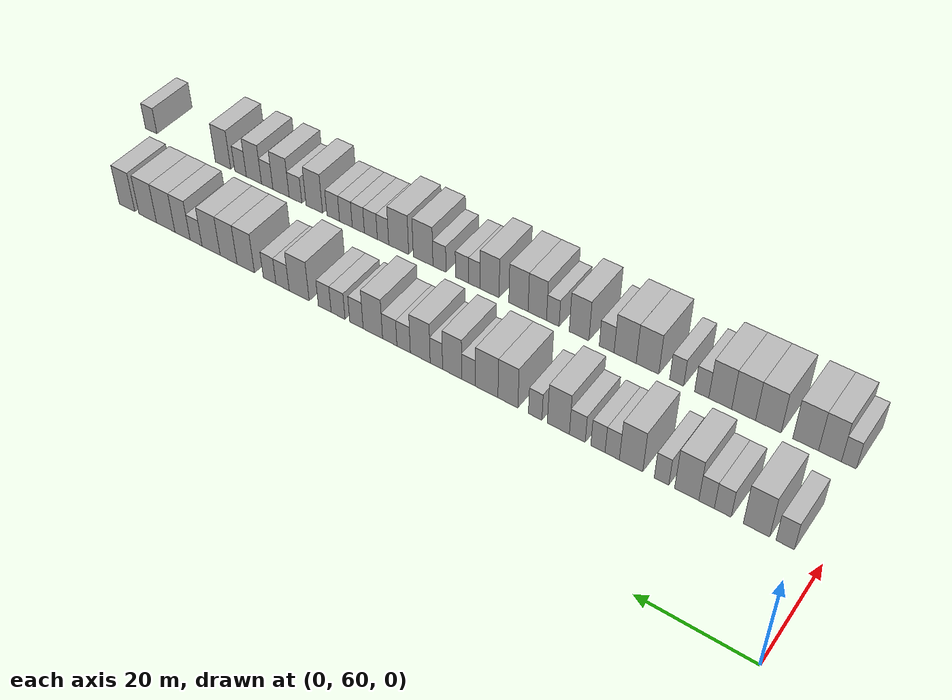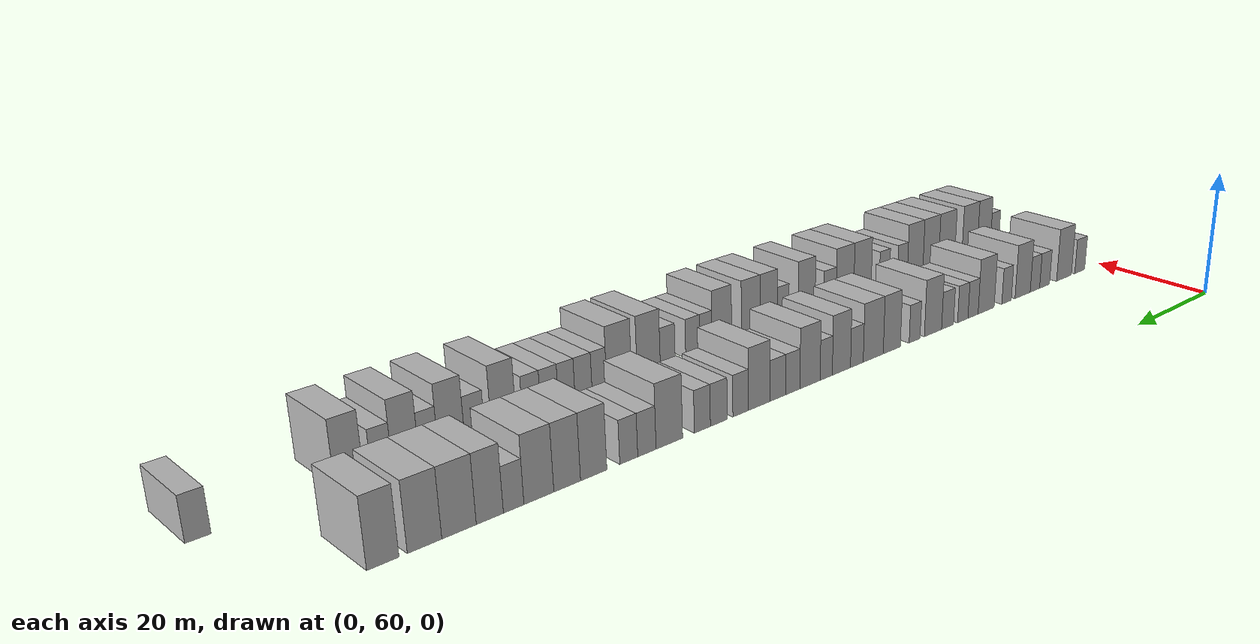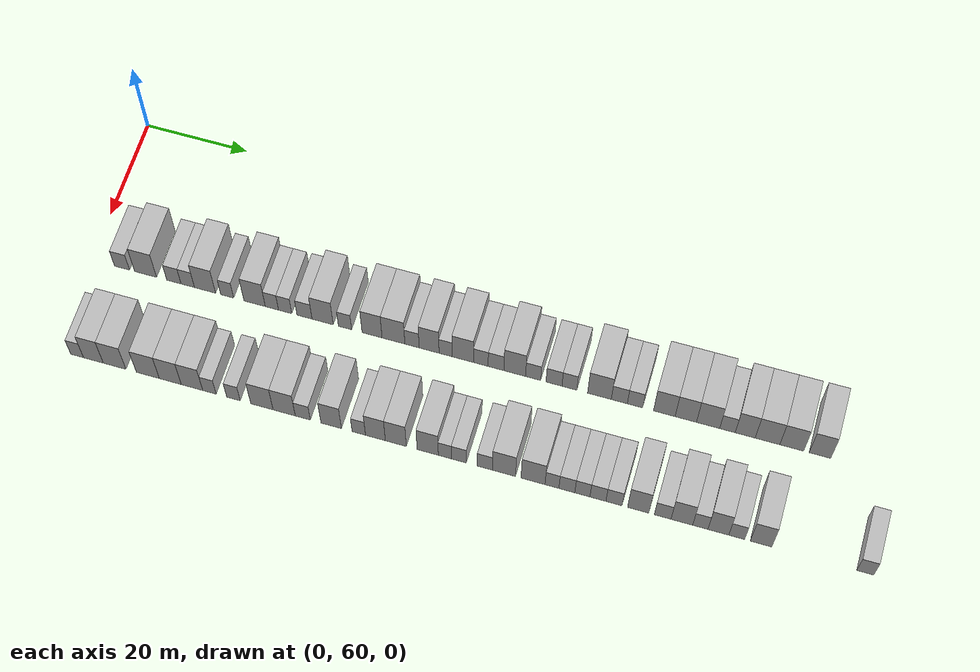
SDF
<sdf version="1.6">
 <world name="default">
  <model name="building_69">
   <static>1</static>
   <pose>25.0000 65.9963 0 0.000000 0.000000 0.000000</pose>
   <link name="link">
    <pose>0 0 3.00 0 0 0</pose>
    <collision name="collision"><geometry><box><size>10.0000 2.9735 6.0000</size></box></geometry></collision>
    <visual name="visual">
     <cast_shadows>0</cast_shadows>
     <geometry><box><size>10.0000 2.9735 6.0000</size></box></geometry>
     <material>
      <script>
       <uri>model://HANNAS_wall/materials/scripts</uri>
       <uri>model://HANNAS_wall/materials/textures</uri>
       <name>vrc/HANNAS_wall</name>
      </script>
     </material>
    </visual>
   </link>
  </model>
  <model name="building_70">
   <static>1</static>
   <pose>25.0000 70.6394 0 0.000000 0.000000 0.000000</pose>
   <link name="link">
    <pose>0 0 4.50 0 0 0</pose>
    <collision name="collision"><geometry><box><size>10.0000 4.3127 9.0000</size></box></geometry></collision>
    <visual name="visual">
     <cast_shadows>0</cast_shadows>
     <geometry><box><size>10.0000 4.3127 9.0000</size></box></geometry>
     <material>
      <script>
       <uri>model://HANNAS_wall/materials/scripts</uri>
       <uri>model://HANNAS_wall/materials/textures</uri>
       <name>vrc/HANNAS_wall</name>
      </script>
     </material>
    </visual>
   </link>
  </model>
  <model name="building_71">
   <static>1</static>
   <pose>25.0000 76.1964 0 0.000000 0.000000 0.000000</pose>
   <link name="link">
    <pose>0 0 3.00 0 0 0</pose>
    <collision name="collision"><geometry><box><size>10.0000 2.8014 6.0000</size></box></geometry></collision>
    <visual name="visual">
     <cast_shadows>0</cast_shadows>
     <geometry><box><size>10.0000 2.8014 6.0000</size></box></geometry>
     <material>
      <script>
       <uri>model://HANNAS_wall/materials/scripts</uri>
       <uri>model://HANNAS_wall/materials/textures</uri>
       <name>vrc/HANNAS_wall</name>
      </script>
     </material>
    </visual>
   </link>
  </model>
  <model name="building_72">
   <static>1</static>
   <pose>25.0000 78.9055 0 0.000000 0.000000 0.000000</pose>
   <link name="link">
    <pose>0 0 3.00 0 0 0</pose>
    <collision name="collision"><geometry><box><size>10.0000 2.6168 6.0000</size></box></geometry></collision>
    <visual name="visual">
     <cast_shadows>0</cast_shadows>
     <geometry><box><size>10.0000 2.6168 6.0000</size></box></geometry>
     <material>
      <script>
       <uri>model://HANNAS_wall/materials/scripts</uri>
       <uri>model://HANNAS_wall/materials/textures</uri>
       <name>vrc/HANNAS_wall</name>
      </script>
     </material>
    </visual>
   </link>
  </model>
  <model name="building_73">
   <static>1</static>
   <pose>25.0000 82.2757 0 0.000000 0.000000 0.000000</pose>
   <link name="link">
    <pose>0 0 4.50 0 0 0</pose>
    <collision name="collision"><geometry><box><size>10.0000 4.1236 9.0000</size></box></geometry></collision>
    <visual name="visual">
     <cast_shadows>0</cast_shadows>
     <geometry><box><size>10.0000 4.1236 9.0000</size></box></geometry>
     <material>
      <script>
       <uri>model://HANNAS_wall/materials/scripts</uri>
       <uri>model://HANNAS_wall/materials/textures</uri>
       <name>vrc/HANNAS_wall</name>
      </script>
     </material>
    </visual>
   </link>
  </model>
  <model name="building_74">
   <static>1</static>
   <pose>25.0000 86.5996 0 0.000000 0.000000 0.000000</pose>
   <link name="link">
    <pose>0 0 3.00 0 0 0</pose>
    <collision name="collision"><geometry><box><size>10.0000 2.5241 6.0000</size></box></geometry></collision>
    <visual name="visual">
     <cast_shadows>0</cast_shadows>
     <geometry><box><size>10.0000 2.5241 6.0000</size></box></geometry>
     <material>
      <script>
       <uri>model://HANNAS_wall/materials/scripts</uri>
       <uri>model://HANNAS_wall/materials/textures</uri>
       <name>vrc/HANNAS_wall</name>
      </script>
     </material>
    </visual>
   </link>
  </model>
  <model name="building_75">
   <static>1</static>
   <pose>25.0000 91.9286 0 0.000000 0.000000 0.000000</pose>
   <link name="link">
    <pose>0 0 4.50 0 0 0</pose>
    <collision name="collision"><geometry><box><size>10.0000 4.1339 9.0000</size></box></geometry></collision>
    <visual name="visual">
     <cast_shadows>0</cast_shadows>
     <geometry><box><size>10.0000 4.1339 9.0000</size></box></geometry>
     <material>
      <script>
       <uri>model://HANNAS_wall/materials/scripts</uri>
       <uri>model://HANNAS_wall/materials/textures</uri>
       <name>vrc/HANNAS_wall</name>
      </script>
     </material>
    </visual>
   </link>
  </model>
  <model name="building_76">
   <static>1</static>
   <pose>25.0000 95.2708 0 0.000000 0.000000 0.000000</pose>
   <link name="link">
    <pose>0 0 3.00 0 0 0</pose>
    <collision name="collision"><geometry><box><size>10.0000 2.5506 6.0000</size></box></geometry></collision>
    <visual name="visual">
     <cast_shadows>0</cast_shadows>
     <geometry><box><size>10.0000 2.5506 6.0000</size></box></geometry>
     <material>
      <script>
       <uri>model://HANNAS_wall/materials/scripts</uri>
       <uri>model://HANNAS_wall/materials/textures</uri>
       <name>vrc/HANNAS_wall</name>
      </script>
     </material>
    </visual>
   </link>
  </model>
  <model name="building_77">
   <static>1</static>
   <pose>25.0000 97.8329 0 0.000000 0.000000 0.000000</pose>
   <link name="link">
    <pose>0 0 3.00 0 0 0</pose>
    <collision name="collision"><geometry><box><size>10.0000 2.5735 6.0000</size></box></geometry></collision>
    <visual name="visual">
     <cast_shadows>0</cast_shadows>
     <geometry><box><size>10.0000 2.5735 6.0000</size></box></geometry>
     <material>
      <script>
       <uri>model://HANNAS_wall/materials/scripts</uri>
       <uri>model://HANNAS_wall/materials/textures</uri>
       <name>vrc/HANNAS_wall</name>
      </script>
     </material>
    </visual>
   </link>
  </model>
  <model name="building_78">
   <static>1</static>
   <pose>25.0000 101.5689 0 0.000000 0.000000 0.000000</pose>
   <link name="link">
    <pose>0 0 3.00 0 0 0</pose>
    <collision name="collision"><geometry><box><size>10.0000 2.8985 6.0000</size></box></geometry></collision>
    <visual name="visual">
     <cast_shadows>0</cast_shadows>
     <geometry><box><size>10.0000 2.8985 6.0000</size></box></geometry>
     <material>
      <script>
       <uri>model://HANNAS_wall/materials/scripts</uri>
       <uri>model://HANNAS_wall/materials/textures</uri>
       <name>vrc/HANNAS_wall</name>
      </script>
     </material>
    </visual>
   </link>
  </model>
  <model name="building_79">
   <static>1</static>
   <pose>25.0000 105.0564 0 0.000000 0.000000 0.000000</pose>
   <link name="link">
    <pose>0 0 4.50 0 0 0</pose>
    <collision name="collision"><geometry><box><size>10.0000 4.0766 9.0000</size></box></geometry></collision>
    <visual name="visual">
     <cast_shadows>0</cast_shadows>
     <geometry><box><size>10.0000 4.0766 9.0000</size></box></geometry>
     <material>
      <script>
       <uri>model://HANNAS_wall/materials/scripts</uri>
       <uri>model://HANNAS_wall/materials/textures</uri>
       <name>vrc/HANNAS_wall</name>
      </script>
     </material>
    </visual>
   </link>
  </model>
  <model name="building_80">
   <static>1</static>
   <pose>25.0000 109.3608 0 0.000000 0.000000 0.000000</pose>
   <link name="link">
    <pose>0 0 3.00 0 0 0</pose>
    <collision name="collision"><geometry><box><size>10.0000 2.5323 6.0000</size></box></geometry></collision>
    <visual name="visual">
     <cast_shadows>0</cast_shadows>
     <geometry><box><size>10.0000 2.5323 6.0000</size></box></geometry>
     <material>
      <script>
       <uri>model://HANNAS_wall/materials/scripts</uri>
       <uri>model://HANNAS_wall/materials/textures</uri>
       <name>vrc/HANNAS_wall</name>
      </script>
     </material>
    </visual>
   </link>
  </model>
  <model name="building_81">
   <static>1</static>
   <pose>25.0000 114.5325 0 0.000000 0.000000 0.000000</pose>
   <link name="link">
    <pose>0 0 4.50 0 0 0</pose>
    <collision name="collision"><geometry><box><size>10.0000 3.8111 9.0000</size></box></geometry></collision>
    <visual name="visual">
     <cast_shadows>0</cast_shadows>
     <geometry><box><size>10.0000 3.8111 9.0000</size></box></geometry>
     <material>
      <script>
       <uri>model://HANNAS_wall/materials/scripts</uri>
       <uri>model://HANNAS_wall/materials/textures</uri>
       <name>vrc/HANNAS_wall</name>
      </script>
     </material>
    </visual>
   </link>
  </model>
  <model name="building_82">
   <static>1</static>
   <pose>25.0000 118.6159 0 0.000000 0.000000 0.000000</pose>
   <link name="link">
    <pose>0 0 4.50 0 0 0</pose>
    <collision name="collision"><geometry><box><size>10.0000 4.3557 9.0000</size></box></geometry></collision>
    <visual name="visual">
     <cast_shadows>0</cast_shadows>
     <geometry><box><size>10.0000 4.3557 9.0000</size></box></geometry>
     <material>
      <script>
       <uri>model://HANNAS_wall/materials/scripts</uri>
       <uri>model://HANNAS_wall/materials/textures</uri>
       <name>vrc/HANNAS_wall</name>
      </script>
     </material>
    </visual>
   </link>
  </model>
  <model name="building_83">
   <static>1</static>
   <pose>25.0000 122.1477 0 0.000000 0.000000 0.000000</pose>
   <link name="link">
    <pose>0 0 3.00 0 0 0</pose>
    <collision name="collision"><geometry><box><size>10.0000 2.7079 6.0000</size></box></geometry></collision>
    <visual name="visual">
     <cast_shadows>0</cast_shadows>
     <geometry><box><size>10.0000 2.7079 6.0000</size></box></geometry>
     <material>
      <script>
       <uri>model://HANNAS_wall/materials/scripts</uri>
       <uri>model://HANNAS_wall/materials/textures</uri>
       <name>vrc/HANNAS_wall</name>
      </script>
     </material>
    </visual>
   </link>
  </model>
  <model name="building_84">
   <static>1</static>
   <pose>25.0000 125.3897 0 0.000000 0.000000 0.000000</pose>
   <link name="link">
    <pose>0 0 4.50 0 0 0</pose>
    <collision name="collision"><geometry><box><size>10.0000 3.7761 9.0000</size></box></geometry></collision>
    <visual name="visual">
     <cast_shadows>0</cast_shadows>
     <geometry><box><size>10.0000 3.7761 9.0000</size></box></geometry>
     <material>
      <script>
       <uri>model://HANNAS_wall/materials/scripts</uri>
       <uri>model://HANNAS_wall/materials/textures</uri>
       <name>vrc/HANNAS_wall</name>
      </script>
     </material>
    </visual>
   </link>
  </model>
  <model name="building_85">
   <static>1</static>
   <pose>25.0000 128.5174 0 0.000000 0.000000 0.000000</pose>
   <link name="link">
    <pose>0 0 3.00 0 0 0</pose>
    <collision name="collision"><geometry><box><size>10.0000 2.4793 6.0000</size></box></geometry></collision>
    <visual name="visual">
     <cast_shadows>0</cast_shadows>
     <geometry><box><size>10.0000 2.4793 6.0000</size></box></geometry>
     <material>
      <script>
       <uri>model://HANNAS_wall/materials/scripts</uri>
       <uri>model://HANNAS_wall/materials/textures</uri>
       <name>vrc/HANNAS_wall</name>
      </script>
     </material>
    </visual>
   </link>
  </model>
  <model name="building_86">
   <static>1</static>
   <pose>25.0000 131.7657 0 0.000000 0.000000 0.000000</pose>
   <link name="link">
    <pose>0 0 4.50 0 0 0</pose>
    <collision name="collision"><geometry><box><size>10.0000 4.0173 9.0000</size></box></geometry></collision>
    <visual name="visual">
     <cast_shadows>0</cast_shadows>
     <geometry><box><size>10.0000 4.0173 9.0000</size></box></geometry>
     <material>
      <script>
       <uri>model://HANNAS_wall/materials/scripts</uri>
       <uri>model://HANNAS_wall/materials/textures</uri>
       <name>vrc/HANNAS_wall</name>
      </script>
     </material>
    </visual>
   </link>
  </model>
  <model name="building_87">
   <static>1</static>
   <pose>25.0000 135.1532 0 0.000000 0.000000 0.000000</pose>
   <link name="link">
    <pose>0 0 3.00 0 0 0</pose>
    <collision name="collision"><geometry><box><size>10.0000 2.7577 6.0000</size></box></geometry></collision>
    <visual name="visual">
     <cast_shadows>0</cast_shadows>
     <geometry><box><size>10.0000 2.7577 6.0000</size></box></geometry>
     <material>
      <script>
       <uri>model://HANNAS_wall/materials/scripts</uri>
       <uri>model://HANNAS_wall/materials/textures</uri>
       <name>vrc/HANNAS_wall</name>
      </script>
     </material>
    </visual>
   </link>
  </model>
  <model name="building_88">
   <static>1</static>
   <pose>25.0000 138.0115 0 0.000000 0.000000 0.000000</pose>
   <link name="link">
    <pose>0 0 3.00 0 0 0</pose>
    <collision name="collision"><geometry><box><size>10.0000 2.9589 6.0000</size></box></geometry></collision>
    <visual name="visual">
     <cast_shadows>0</cast_shadows>
     <geometry><box><size>10.0000 2.9589 6.0000</size></box></geometry>
     <material>
      <script>
       <uri>model://HANNAS_wall/materials/scripts</uri>
       <uri>model://HANNAS_wall/materials/textures</uri>
       <name>vrc/HANNAS_wall</name>
      </script>
     </material>
    </visual>
   </link>
  </model>
  <model name="building_89">
   <static>1</static>
   <pose>25.0000 141.5242 0 0.000000 0.000000 0.000000</pose>
   <link name="link">
    <pose>0 0 4.50 0 0 0</pose>
    <collision name="collision"><geometry><box><size>10.0000 4.0667 9.0000</size></box></geometry></collision>
    <visual name="visual">
     <cast_shadows>0</cast_shadows>
     <geometry><box><size>10.0000 4.0667 9.0000</size></box></geometry>
     <material>
      <script>
       <uri>model://HANNAS_wall/materials/scripts</uri>
       <uri>model://HANNAS_wall/materials/textures</uri>
       <name>vrc/HANNAS_wall</name>
      </script>
     </material>
    </visual>
   </link>
  </model>
  <model name="building_90">
   <static>1</static>
   <pose>25.0000 144.9742 0 0.000000 0.000000 0.000000</pose>
   <link name="link">
    <pose>0 0 3.00 0 0 0</pose>
    <collision name="collision"><geometry><box><size>10.0000 2.8333 6.0000</size></box></geometry></collision>
    <visual name="visual">
     <cast_shadows>0</cast_shadows>
     <geometry><box><size>10.0000 2.8333 6.0000</size></box></geometry>
     <material>
      <script>
       <uri>model://HANNAS_wall/materials/scripts</uri>
       <uri>model://HANNAS_wall/materials/textures</uri>
       <name>vrc/HANNAS_wall</name>
      </script>
     </material>
    </visual>
   </link>
  </model>
  <model name="building_91">
   <static>1</static>
   <pose>25.0000 148.8829 0 0.000000 0.000000 0.000000</pose>
   <link name="link">
    <pose>0 0 3.00 0 0 0</pose>
    <collision name="collision"><geometry><box><size>10.0000 2.9840 6.0000</size></box></geometry></collision>
    <visual name="visual">
     <cast_shadows>0</cast_shadows>
     <geometry><box><size>10.0000 2.9840 6.0000</size></box></geometry>
     <material>
      <script>
       <uri>model://HANNAS_wall/materials/scripts</uri>
       <uri>model://HANNAS_wall/materials/textures</uri>
       <name>vrc/HANNAS_wall</name>
      </script>
     </material>
    </visual>
   </link>
  </model>
  <model name="building_92">
   <static>1</static>
   <pose>25.0000 151.7596 0 0.000000 0.000000 0.000000</pose>
   <link name="link">
    <pose>0 0 3.00 0 0 0</pose>
    <collision name="collision"><geometry><box><size>10.0000 2.7694 6.0000</size></box></geometry></collision>
    <visual name="visual">
     <cast_shadows>0</cast_shadows>
     <geometry><box><size>10.0000 2.7694 6.0000</size></box></geometry>
     <material>
      <script>
       <uri>model://HANNAS_wall/materials/scripts</uri>
       <uri>model://HANNAS_wall/materials/textures</uri>
       <name>vrc/HANNAS_wall</name>
      </script>
     </material>
    </visual>
   </link>
  </model>
  <model name="building_93">
   <static>1</static>
   <pose>25.0000 157.3457 0 0.000000 0.000000 0.000000</pose>
   <link name="link">
    <pose>0 0 4.50 0 0 0</pose>
    <collision name="collision"><geometry><box><size>10.0000 4.4028 9.0000</size></box></geometry></collision>
    <visual name="visual">
     <cast_shadows>0</cast_shadows>
     <geometry><box><size>10.0000 4.4028 9.0000</size></box></geometry>
     <material>
      <script>
       <uri>model://HANNAS_wall/materials/scripts</uri>
       <uri>model://HANNAS_wall/materials/textures</uri>
       <name>vrc/HANNAS_wall</name>
      </script>
     </material>
    </visual>
   </link>
  </model>
  <model name="building_94">
   <static>1</static>
   <pose>25.0000 161.0267 0 0.000000 0.000000 0.000000</pose>
   <link name="link">
    <pose>0 0 3.00 0 0 0</pose>
    <collision name="collision"><geometry><box><size>10.0000 2.9591 6.0000</size></box></geometry></collision>
    <visual name="visual">
     <cast_shadows>0</cast_shadows>
     <geometry><box><size>10.0000 2.9591 6.0000</size></box></geometry>
     <material>
      <script>
       <uri>model://HANNAS_wall/materials/scripts</uri>
       <uri>model://HANNAS_wall/materials/textures</uri>
       <name>vrc/HANNAS_wall</name>
      </script>
     </material>
    </visual>
   </link>
  </model>
  <model name="building_95">
   <static>1</static>
   <pose>25.0000 163.9255 0 0.000000 0.000000 0.000000</pose>
   <link name="link">
    <pose>0 0 3.00 0 0 0</pose>
    <collision name="collision"><geometry><box><size>10.0000 2.8386 6.0000</size></box></geometry></collision>
    <visual name="visual">
     <cast_shadows>0</cast_shadows>
     <geometry><box><size>10.0000 2.8386 6.0000</size></box></geometry>
     <material>
      <script>
       <uri>model://HANNAS_wall/materials/scripts</uri>
       <uri>model://HANNAS_wall/materials/textures</uri>
       <name>vrc/HANNAS_wall</name>
      </script>
     </material>
    </visual>
   </link>
  </model>
  <model name="building_96">
   <static>1</static>
   <pose>25.0000 169.3381 0 0.000000 0.000000 0.000000</pose>
   <link name="link">
    <pose>0 0 4.50 0 0 0</pose>
    <collision name="collision"><geometry><box><size>10.0000 3.9866 9.0000</size></box></geometry></collision>
    <visual name="visual">
     <cast_shadows>0</cast_shadows>
     <geometry><box><size>10.0000 3.9866 9.0000</size></box></geometry>
     <material>
      <script>
       <uri>model://HANNAS_wall/materials/scripts</uri>
       <uri>model://HANNAS_wall/materials/textures</uri>
       <name>vrc/HANNAS_wall</name>
      </script>
     </material>
    </visual>
   </link>
  </model>
  <model name="building_97">
   <static>1</static>
   <pose>25.0000 173.2915 0 0.000000 0.000000 0.000000</pose>
   <link name="link">
    <pose>0 0 4.50 0 0 0</pose>
    <collision name="collision"><geometry><box><size>10.0000 3.9202 9.0000</size></box></geometry></collision>
    <visual name="visual">
     <cast_shadows>0</cast_shadows>
     <geometry><box><size>10.0000 3.9202 9.0000</size></box></geometry>
     <material>
      <script>
       <uri>model://HANNAS_wall/materials/scripts</uri>
       <uri>model://HANNAS_wall/materials/textures</uri>
       <name>vrc/HANNAS_wall</name>
      </script>
     </material>
    </visual>
   </link>
  </model>
  <model name="building_98">
   <static>1</static>
   <pose>25.0000 177.3759 0 0.000000 0.000000 0.000000</pose>
   <link name="link">
    <pose>0 0 4.50 0 0 0</pose>
    <collision name="collision"><geometry><box><size>10.0000 4.2484 9.0000</size></box></geometry></collision>
    <visual name="visual">
     <cast_shadows>0</cast_shadows>
     <geometry><box><size>10.0000 4.2484 9.0000</size></box></geometry>
     <material>
      <script>
       <uri>model://HANNAS_wall/materials/scripts</uri>
       <uri>model://HANNAS_wall/materials/textures</uri>
       <name>vrc/HANNAS_wall</name>
      </script>
     </material>
    </visual>
   </link>
  </model>
  <model name="building_99">
   <static>1</static>
   <pose>25.0000 180.9170 0 0.000000 0.000000 0.000000</pose>
   <link name="link">
    <pose>0 0 3.00 0 0 0</pose>
    <collision name="collision"><geometry><box><size>10.0000 2.8338 6.0000</size></box></geometry></collision>
    <visual name="visual">
     <cast_shadows>0</cast_shadows>
     <geometry><box><size>10.0000 2.8338 6.0000</size></box></geometry>
     <material>
      <script>
       <uri>model://HANNAS_wall/materials/scripts</uri>
       <uri>model://HANNAS_wall/materials/textures</uri>
       <name>vrc/HANNAS_wall</name>
      </script>
     </material>
    </visual>
   </link>
  </model>
  <model name="building_100">
   <static>1</static>
   <pose>25.0000 184.1531 0 0.000000 0.000000 0.000000</pose>
   <link name="link">
    <pose>0 0 4.50 0 0 0</pose>
    <collision name="collision"><geometry><box><size>10.0000 3.6385 9.0000</size></box></geometry></collision>
    <visual name="visual">
     <cast_shadows>0</cast_shadows>
     <geometry><box><size>10.0000 3.6385 9.0000</size></box></geometry>
     <material>
      <script>
       <uri>model://HANNAS_wall/materials/scripts</uri>
       <uri>model://HANNAS_wall/materials/textures</uri>
       <name>vrc/HANNAS_wall</name>
      </script>
     </material>
    </visual>
   </link>
  </model>
  <model name="building_101">
   <static>1</static>
   <pose>25.0000 188.2127 0 0.000000 0.000000 0.000000</pose>
   <link name="link">
    <pose>0 0 4.50 0 0 0</pose>
    <collision name="collision"><geometry><box><size>10.0000 4.4807 9.0000</size></box></geometry></collision>
    <visual name="visual">
     <cast_shadows>0</cast_shadows>
     <geometry><box><size>10.0000 4.4807 9.0000</size></box></geometry>
     <material>
      <script>
       <uri>model://HANNAS_wall/materials/scripts</uri>
       <uri>model://HANNAS_wall/materials/textures</uri>
       <name>vrc/HANNAS_wall</name>
      </script>
     </material>
    </visual>
   </link>
  </model>
  <model name="building_102">
   <static>1</static>
   <pose>25.0000 192.6153 0 0.000000 0.000000 0.000000</pose>
   <link name="link">
    <pose>0 0 4.50 0 0 0</pose>
    <collision name="collision"><geometry><box><size>10.0000 4.3244 9.0000</size></box></geometry></collision>
    <visual name="visual">
     <cast_shadows>0</cast_shadows>
     <geometry><box><size>10.0000 4.3244 9.0000</size></box></geometry>
     <material>
      <script>
       <uri>model://HANNAS_wall/materials/scripts</uri>
       <uri>model://HANNAS_wall/materials/textures</uri>
       <name>vrc/HANNAS_wall</name>
      </script>
     </material>
    </visual>
   </link>
  </model>
  <model name="building_103">
   <static>1</static>
   <pose>25.0000 197.7254 0 0.000000 0.000000 0.000000</pose>
   <link name="link">
    <pose>0 0 4.50 0 0 0</pose>
    <collision name="collision"><geometry><box><size>10.0000 3.8959 9.0000</size></box></geometry></collision>
    <visual name="visual">
     <cast_shadows>0</cast_shadows>
     <geometry><box><size>10.0000 3.8959 9.0000</size></box></geometry>
     <material>
      <script>
       <uri>model://HANNAS_wall/materials/scripts</uri>
       <uri>model://HANNAS_wall/materials/textures</uri>
       <name>vrc/HANNAS_wall</name>
      </script>
     </material>
    </visual>
   </link>
  </model>
  <model name="building_172">
   <static>1</static>
   <pose>44.0000 64.4991 0 0.000000 0.000000 0.000000</pose>
   <link name="link">
    <pose>0 0 3.00 0 0 0</pose>
    <collision name="collision"><geometry><box><size>10.0000 2.4807 6.0000</size></box></geometry></collision>
    <visual name="visual">
     <cast_shadows>0</cast_shadows>
     <geometry><box><size>10.0000 2.4807 6.0000</size></box></geometry>
     <material>
      <script>
       <uri>model://HANNAS_wall/materials/scripts</uri>
       <uri>model://HANNAS_wall/materials/textures</uri>
       <name>vrc/HANNAS_wall</name>
      </script>
     </material>
    </visual>
   </link>
  </model>
  <model name="building_173">
   <static>1</static>
   <pose>44.0000 67.6470 0 0.000000 0.000000 0.000000</pose>
   <link name="link">
    <pose>0 0 4.50 0 0 0</pose>
    <collision name="collision"><geometry><box><size>10.0000 3.8150 9.0000</size></box></geometry></collision>
    <visual name="visual">
     <cast_shadows>0</cast_shadows>
     <geometry><box><size>10.0000 3.8150 9.0000</size></box></geometry>
     <material>
      <script>
       <uri>model://HANNAS_wall/materials/scripts</uri>
       <uri>model://HANNAS_wall/materials/textures</uri>
       <name>vrc/HANNAS_wall</name>
      </script>
     </material>
    </visual>
   </link>
  </model>
  <model name="building_174">
   <static>1</static>
   <pose>44.0000 71.7350 0 0.000000 0.000000 0.000000</pose>
   <link name="link">
    <pose>0 0 4.50 0 0 0</pose>
    <collision name="collision"><geometry><box><size>10.0000 4.3610 9.0000</size></box></geometry></collision>
    <visual name="visual">
     <cast_shadows>0</cast_shadows>
     <geometry><box><size>10.0000 4.3610 9.0000</size></box></geometry>
     <material>
      <script>
       <uri>model://HANNAS_wall/materials/scripts</uri>
       <uri>model://HANNAS_wall/materials/textures</uri>
       <name>vrc/HANNAS_wall</name>
      </script>
     </material>
    </visual>
   </link>
  </model>
  <model name="building_175">
   <static>1</static>
   <pose>44.0000 78.1248 0 0.000000 0.000000 0.000000</pose>
   <link name="link">
    <pose>0 0 4.50 0 0 0</pose>
    <collision name="collision"><geometry><box><size>10.0000 4.4186 9.0000</size></box></geometry></collision>
    <visual name="visual">
     <cast_shadows>0</cast_shadows>
     <geometry><box><size>10.0000 4.4186 9.0000</size></box></geometry>
     <material>
      <script>
       <uri>model://HANNAS_wall/materials/scripts</uri>
       <uri>model://HANNAS_wall/materials/textures</uri>
       <name>vrc/HANNAS_wall</name>
      </script>
     </material>
    </visual>
   </link>
  </model>
  <model name="building_176">
   <static>1</static>
   <pose>44.0000 82.4420 0 0.000000 0.000000 0.000000</pose>
   <link name="link">
    <pose>0 0 4.50 0 0 0</pose>
    <collision name="collision"><geometry><box><size>10.0000 4.2157 9.0000</size></box></geometry></collision>
    <visual name="visual">
     <cast_shadows>0</cast_shadows>
     <geometry><box><size>10.0000 4.2157 9.0000</size></box></geometry>
     <material>
      <script>
       <uri>model://HANNAS_wall/materials/scripts</uri>
       <uri>model://HANNAS_wall/materials/textures</uri>
       <name>vrc/HANNAS_wall</name>
      </script>
     </material>
    </visual>
   </link>
  </model>
  <model name="building_177">
   <static>1</static>
   <pose>44.0000 86.5900 0 0.000000 0.000000 0.000000</pose>
   <link name="link">
    <pose>0 0 4.50 0 0 0</pose>
    <collision name="collision"><geometry><box><size>10.0000 4.0802 9.0000</size></box></geometry></collision>
    <visual name="visual">
     <cast_shadows>0</cast_shadows>
     <geometry><box><size>10.0000 4.0802 9.0000</size></box></geometry>
     <material>
      <script>
       <uri>model://HANNAS_wall/materials/scripts</uri>
       <uri>model://HANNAS_wall/materials/textures</uri>
       <name>vrc/HANNAS_wall</name>
      </script>
     </material>
    </visual>
   </link>
  </model>
  <model name="building_178">
   <static>1</static>
   <pose>44.0000 89.9077 0 0.000000 0.000000 0.000000</pose>
   <link name="link">
    <pose>0 0 3.00 0 0 0</pose>
    <collision name="collision"><geometry><box><size>10.0000 2.5551 6.0000</size></box></geometry></collision>
    <visual name="visual">
     <cast_shadows>0</cast_shadows>
     <geometry><box><size>10.0000 2.5551 6.0000</size></box></geometry>
     <material>
      <script>
       <uri>model://HANNAS_wall/materials/scripts</uri>
       <uri>model://HANNAS_wall/materials/textures</uri>
       <name>vrc/HANNAS_wall</name>
      </script>
     </material>
    </visual>
   </link>
  </model>
  <model name="building_179">
   <static>1</static>
   <pose>44.0000 94.4701 0 0.000000 0.000000 0.000000</pose>
   <link name="link">
    <pose>0 0 3.00 0 0 0</pose>
    <collision name="collision"><geometry><box><size>10.0000 2.5698 6.0000</size></box></geometry></collision>
    <visual name="visual">
     <cast_shadows>0</cast_shadows>
     <geometry><box><size>10.0000 2.5698 6.0000</size></box></geometry>
     <material>
      <script>
       <uri>model://HANNAS_wall/materials/scripts</uri>
       <uri>model://HANNAS_wall/materials/textures</uri>
       <name>vrc/HANNAS_wall</name>
      </script>
     </material>
    </visual>
   </link>
  </model>
  <model name="building_180">
   <static>1</static>
   <pose>44.0000 99.8649 0 0.000000 0.000000 0.000000</pose>
   <link name="link">
    <pose>0 0 4.50 0 0 0</pose>
    <collision name="collision"><geometry><box><size>10.0000 4.2198 9.0000</size></box></geometry></collision>
    <visual name="visual">
     <cast_shadows>0</cast_shadows>
     <geometry><box><size>10.0000 4.2198 9.0000</size></box></geometry>
     <material>
      <script>
       <uri>model://HANNAS_wall/materials/scripts</uri>
       <uri>model://HANNAS_wall/materials/textures</uri>
       <name>vrc/HANNAS_wall</name>
      </script>
     </material>
    </visual>
   </link>
  </model>
  <model name="building_181">
   <static>1</static>
   <pose>44.0000 104.0698 0 0.000000 0.000000 0.000000</pose>
   <link name="link">
    <pose>0 0 4.50 0 0 0</pose>
    <collision name="collision"><geometry><box><size>10.0000 4.1899 9.0000</size></box></geometry></collision>
    <visual name="visual">
     <cast_shadows>0</cast_shadows>
     <geometry><box><size>10.0000 4.1899 9.0000</size></box></geometry>
     <material>
      <script>
       <uri>model://HANNAS_wall/materials/scripts</uri>
       <uri>model://HANNAS_wall/materials/textures</uri>
       <name>vrc/HANNAS_wall</name>
      </script>
     </material>
    </visual>
   </link>
  </model>
  <model name="building_182">
   <static>1</static>
   <pose>44.0000 107.5811 0 0.000000 0.000000 0.000000</pose>
   <link name="link">
    <pose>0 0 3.00 0 0 0</pose>
    <collision name="collision"><geometry><box><size>10.0000 2.8328 6.0000</size></box></geometry></collision>
    <visual name="visual">
     <cast_shadows>0</cast_shadows>
     <geometry><box><size>10.0000 2.8328 6.0000</size></box></geometry>
     <material>
      <script>
       <uri>model://HANNAS_wall/materials/scripts</uri>
       <uri>model://HANNAS_wall/materials/textures</uri>
       <name>vrc/HANNAS_wall</name>
      </script>
     </material>
    </visual>
   </link>
  </model>
  <model name="building_183">
   <static>1</static>
   <pose>44.0000 112.9150 0 0.000000 0.000000 0.000000</pose>
   <link name="link">
    <pose>0 0 4.50 0 0 0</pose>
    <collision name="collision"><geometry><box><size>10.0000 3.8351 9.0000</size></box></geometry></collision>
    <visual name="visual">
     <cast_shadows>0</cast_shadows>
     <geometry><box><size>10.0000 3.8351 9.0000</size></box></geometry>
     <material>
      <script>
       <uri>model://HANNAS_wall/materials/scripts</uri>
       <uri>model://HANNAS_wall/materials/textures</uri>
       <name>vrc/HANNAS_wall</name>
      </script>
     </material>
    </visual>
   </link>
  </model>
  <model name="building_184">
   <static>1</static>
   <pose>44.0000 118.0833 0 0.000000 0.000000 0.000000</pose>
   <link name="link">
    <pose>0 0 3.00 0 0 0</pose>
    <collision name="collision"><geometry><box><size>10.0000 2.5014 6.0000</size></box></geometry></collision>
    <visual name="visual">
     <cast_shadows>0</cast_shadows>
     <geometry><box><size>10.0000 2.5014 6.0000</size></box></geometry>
     <material>
      <script>
       <uri>model://HANNAS_wall/materials/scripts</uri>
       <uri>model://HANNAS_wall/materials/textures</uri>
       <name>vrc/HANNAS_wall</name>
      </script>
     </material>
    </visual>
   </link>
  </model>
  <model name="building_185">
   <static>1</static>
   <pose>44.0000 121.1828 0 0.000000 0.000000 0.000000</pose>
   <link name="link">
    <pose>0 0 4.50 0 0 0</pose>
    <collision name="collision"><geometry><box><size>10.0000 3.6976 9.0000</size></box></geometry></collision>
    <visual name="visual">
     <cast_shadows>0</cast_shadows>
     <geometry><box><size>10.0000 3.6976 9.0000</size></box></geometry>
     <material>
      <script>
       <uri>model://HANNAS_wall/materials/scripts</uri>
       <uri>model://HANNAS_wall/materials/textures</uri>
       <name>vrc/HANNAS_wall</name>
      </script>
     </material>
    </visual>
   </link>
  </model>
  <model name="building_186">
   <static>1</static>
   <pose>44.0000 124.9803 0 0.000000 0.000000 0.000000</pose>
   <link name="link">
    <pose>0 0 4.50 0 0 0</pose>
    <collision name="collision"><geometry><box><size>10.0000 3.8973 9.0000</size></box></geometry></collision>
    <visual name="visual">
     <cast_shadows>0</cast_shadows>
     <geometry><box><size>10.0000 3.8973 9.0000</size></box></geometry>
     <material>
      <script>
       <uri>model://HANNAS_wall/materials/scripts</uri>
       <uri>model://HANNAS_wall/materials/textures</uri>
       <name>vrc/HANNAS_wall</name>
      </script>
     </material>
    </visual>
   </link>
  </model>
  <model name="building_187">
   <static>1</static>
   <pose>44.0000 130.8944 0 0.000000 0.000000 0.000000</pose>
   <link name="link">
    <pose>0 0 4.50 0 0 0</pose>
    <collision name="collision"><geometry><box><size>10.0000 3.9309 9.0000</size></box></geometry></collision>
    <visual name="visual">
     <cast_shadows>0</cast_shadows>
     <geometry><box><size>10.0000 3.9309 9.0000</size></box></geometry>
     <material>
      <script>
       <uri>model://HANNAS_wall/materials/scripts</uri>
       <uri>model://HANNAS_wall/materials/textures</uri>
       <name>vrc/HANNAS_wall</name>
      </script>
     </material>
    </visual>
   </link>
  </model>
  <model name="building_188">
   <static>1</static>
   <pose>44.0000 134.0666 0 0.000000 0.000000 0.000000</pose>
   <link name="link">
    <pose>0 0 3.00 0 0 0</pose>
    <collision name="collision"><geometry><box><size>10.0000 2.4135 6.0000</size></box></geometry></collision>
    <visual name="visual">
     <cast_shadows>0</cast_shadows>
     <geometry><box><size>10.0000 2.4135 6.0000</size></box></geometry>
     <material>
      <script>
       <uri>model://HANNAS_wall/materials/scripts</uri>
       <uri>model://HANNAS_wall/materials/textures</uri>
       <name>vrc/HANNAS_wall</name>
      </script>
     </material>
    </visual>
   </link>
  </model>
  <model name="building_189">
   <static>1</static>
   <pose>44.0000 136.6453 0 0.000000 0.000000 0.000000</pose>
   <link name="link">
    <pose>0 0 3.00 0 0 0</pose>
    <collision name="collision"><geometry><box><size>10.0000 2.7441 6.0000</size></box></geometry></collision>
    <visual name="visual">
     <cast_shadows>0</cast_shadows>
     <geometry><box><size>10.0000 2.7441 6.0000</size></box></geometry>
     <material>
      <script>
       <uri>model://HANNAS_wall/materials/scripts</uri>
       <uri>model://HANNAS_wall/materials/textures</uri>
       <name>vrc/HANNAS_wall</name>
      </script>
     </material>
    </visual>
   </link>
  </model>
  <model name="building_190">
   <static>1</static>
   <pose>44.0000 141.4142 0 0.000000 0.000000 0.000000</pose>
   <link name="link">
    <pose>0 0 3.00 0 0 0</pose>
    <collision name="collision"><geometry><box><size>10.0000 2.7936 6.0000</size></box></geometry></collision>
    <visual name="visual">
     <cast_shadows>0</cast_shadows>
     <geometry><box><size>10.0000 2.7936 6.0000</size></box></geometry>
     <material>
      <script>
       <uri>model://HANNAS_wall/materials/scripts</uri>
       <uri>model://HANNAS_wall/materials/textures</uri>
       <name>vrc/HANNAS_wall</name>
      </script>
     </material>
    </visual>
   </link>
  </model>
  <model name="building_191">
   <static>1</static>
   <pose>44.0000 144.9365 0 0.000000 0.000000 0.000000</pose>
   <link name="link">
    <pose>0 0 4.50 0 0 0</pose>
    <collision name="collision"><geometry><box><size>10.0000 4.2511 9.0000</size></box></geometry></collision>
    <visual name="visual">
     <cast_shadows>0</cast_shadows>
     <geometry><box><size>10.0000 4.2511 9.0000</size></box></geometry>
     <material>
      <script>
       <uri>model://HANNAS_wall/materials/scripts</uri>
       <uri>model://HANNAS_wall/materials/textures</uri>
       <name>vrc/HANNAS_wall</name>
      </script>
     </material>
    </visual>
   </link>
  </model>
  <model name="building_192">
   <static>1</static>
   <pose>44.0000 150.2578 0 0.000000 0.000000 0.000000</pose>
   <link name="link">
    <pose>0 0 4.50 0 0 0</pose>
    <collision name="collision"><geometry><box><size>10.0000 4.3915 9.0000</size></box></geometry></collision>
    <visual name="visual">
     <cast_shadows>0</cast_shadows>
     <geometry><box><size>10.0000 4.3915 9.0000</size></box></geometry>
     <material>
      <script>
       <uri>model://HANNAS_wall/materials/scripts</uri>
       <uri>model://HANNAS_wall/materials/textures</uri>
       <name>vrc/HANNAS_wall</name>
      </script>
     </material>
    </visual>
   </link>
  </model>
  <model name="building_193">
   <static>1</static>
   <pose>44.0000 153.7197 0 0.000000 0.000000 0.000000</pose>
   <link name="link">
    <pose>0 0 3.00 0 0 0</pose>
    <collision name="collision"><geometry><box><size>10.0000 2.5322 6.0000</size></box></geometry></collision>
    <visual name="visual">
     <cast_shadows>0</cast_shadows>
     <geometry><box><size>10.0000 2.5322 6.0000</size></box></geometry>
     <material>
      <script>
       <uri>model://HANNAS_wall/materials/scripts</uri>
       <uri>model://HANNAS_wall/materials/textures</uri>
       <name>vrc/HANNAS_wall</name>
      </script>
     </material>
    </visual>
   </link>
  </model>
  <model name="building_194">
   <static>1</static>
   <pose>44.0000 156.4305 0 0.000000 0.000000 0.000000</pose>
   <link name="link">
    <pose>0 0 3.00 0 0 0</pose>
    <collision name="collision"><geometry><box><size>10.0000 2.8894 6.0000</size></box></geometry></collision>
    <visual name="visual">
     <cast_shadows>0</cast_shadows>
     <geometry><box><size>10.0000 2.8894 6.0000</size></box></geometry>
     <material>
      <script>
       <uri>model://HANNAS_wall/materials/scripts</uri>
       <uri>model://HANNAS_wall/materials/textures</uri>
       <name>vrc/HANNAS_wall</name>
      </script>
     </material>
    </visual>
   </link>
  </model>
  <model name="building_195">
   <static>1</static>
   <pose>44.0000 159.2509 0 0.000000 0.000000 0.000000</pose>
   <link name="link">
    <pose>0 0 3.00 0 0 0</pose>
    <collision name="collision"><geometry><box><size>10.0000 2.7515 6.0000</size></box></geometry></collision>
    <visual name="visual">
     <cast_shadows>0</cast_shadows>
     <geometry><box><size>10.0000 2.7515 6.0000</size></box></geometry>
     <material>
      <script>
       <uri>model://HANNAS_wall/materials/scripts</uri>
       <uri>model://HANNAS_wall/materials/textures</uri>
       <name>vrc/HANNAS_wall</name>
      </script>
     </material>
    </visual>
   </link>
  </model>
  <model name="building_196">
   <static>1</static>
   <pose>44.0000 162.0734 0 0.000000 0.000000 0.000000</pose>
   <link name="link">
    <pose>0 0 3.00 0 0 0</pose>
    <collision name="collision"><geometry><box><size>10.0000 2.8935 6.0000</size></box></geometry></collision>
    <visual name="visual">
     <cast_shadows>0</cast_shadows>
     <geometry><box><size>10.0000 2.8935 6.0000</size></box></geometry>
     <material>
      <script>
       <uri>model://HANNAS_wall/materials/scripts</uri>
       <uri>model://HANNAS_wall/materials/textures</uri>
       <name>vrc/HANNAS_wall</name>
      </script>
     </material>
    </visual>
   </link>
  </model>
  <model name="building_197">
   <static>1</static>
   <pose>44.0000 164.9753 0 0.000000 0.000000 0.000000</pose>
   <link name="link">
    <pose>0 0 3.00 0 0 0</pose>
    <collision name="collision"><geometry><box><size>10.0000 2.9102 6.0000</size></box></geometry></collision>
    <visual name="visual">
     <cast_shadows>0</cast_shadows>
     <geometry><box><size>10.0000 2.9102 6.0000</size></box></geometry>
     <material>
      <script>
       <uri>model://HANNAS_wall/materials/scripts</uri>
       <uri>model://HANNAS_wall/materials/textures</uri>
       <name>vrc/HANNAS_wall</name>
      </script>
     </material>
    </visual>
   </link>
  </model>
  <model name="building_198">
   <static>1</static>
   <pose>44.0000 169.3509 0 0.000000 0.000000 0.000000</pose>
   <link name="link">
    <pose>0 0 4.50 0 0 0</pose>
    <collision name="collision"><geometry><box><size>10.0000 3.8411 9.0000</size></box></geometry></collision>
    <visual name="visual">
     <cast_shadows>0</cast_shadows>
     <geometry><box><size>10.0000 3.8411 9.0000</size></box></geometry>
     <material>
      <script>
       <uri>model://HANNAS_wall/materials/scripts</uri>
       <uri>model://HANNAS_wall/materials/textures</uri>
       <name>vrc/HANNAS_wall</name>
      </script>
     </material>
    </visual>
   </link>
  </model>
  <model name="building_199">
   <static>1</static>
   <pose>44.0000 173.7702 0 0.000000 0.000000 0.000000</pose>
   <link name="link">
    <pose>0 0 3.00 0 0 0</pose>
    <collision name="collision"><geometry><box><size>10.0000 2.9974 6.0000</size></box></geometry></collision>
    <visual name="visual">
     <cast_shadows>0</cast_shadows>
     <geometry><box><size>10.0000 2.9974 6.0000</size></box></geometry>
     <material>
      <script>
       <uri>model://HANNAS_wall/materials/scripts</uri>
       <uri>model://HANNAS_wall/materials/textures</uri>
       <name>vrc/HANNAS_wall</name>
      </script>
     </material>
    </visual>
   </link>
  </model>
  <model name="building_200">
   <static>1</static>
   <pose>44.0000 177.2097 0 0.000000 0.000000 0.000000</pose>
   <link name="link">
    <pose>0 0 4.50 0 0 0</pose>
    <collision name="collision"><geometry><box><size>10.0000 3.8816 9.0000</size></box></geometry></collision>
    <visual name="visual">
     <cast_shadows>0</cast_shadows>
     <geometry><box><size>10.0000 3.8816 9.0000</size></box></geometry>
     <material>
      <script>
       <uri>model://HANNAS_wall/materials/scripts</uri>
       <uri>model://HANNAS_wall/materials/textures</uri>
       <name>vrc/HANNAS_wall</name>
      </script>
     </material>
    </visual>
   </link>
  </model>
  <model name="building_201">
   <static>1</static>
   <pose>44.0000 180.5198 0 0.000000 0.000000 0.000000</pose>
   <link name="link">
    <pose>0 0 3.00 0 0 0</pose>
    <collision name="collision"><geometry><box><size>10.0000 2.7384 6.0000</size></box></geometry></collision>
    <visual name="visual">
     <cast_shadows>0</cast_shadows>
     <geometry><box><size>10.0000 2.7384 6.0000</size></box></geometry>
     <material>
      <script>
       <uri>model://HANNAS_wall/materials/scripts</uri>
       <uri>model://HANNAS_wall/materials/textures</uri>
       <name>vrc/HANNAS_wall</name>
      </script>
     </material>
    </visual>
   </link>
  </model>
  <model name="building_202">
   <static>1</static>
   <pose>44.0000 183.7460 0 0.000000 0.000000 0.000000</pose>
   <link name="link">
    <pose>0 0 4.50 0 0 0</pose>
    <collision name="collision"><geometry><box><size>10.0000 3.7141 9.0000</size></box></geometry></collision>
    <visual name="visual">
     <cast_shadows>0</cast_shadows>
     <geometry><box><size>10.0000 3.7141 9.0000</size></box></geometry>
     <material>
      <script>
       <uri>model://HANNAS_wall/materials/scripts</uri>
       <uri>model://HANNAS_wall/materials/textures</uri>
       <name>vrc/HANNAS_wall</name>
      </script>
     </material>
    </visual>
   </link>
  </model>
  <model name="building_203">
   <static>1</static>
   <pose>44.0000 187.0171 0 0.000000 0.000000 0.000000</pose>
   <link name="link">
    <pose>0 0 3.00 0 0 0</pose>
    <collision name="collision"><geometry><box><size>10.0000 2.8280 6.0000</size></box></geometry></collision>
    <visual name="visual">
     <cast_shadows>0</cast_shadows>
     <geometry><box><size>10.0000 2.8280 6.0000</size></box></geometry>
     <material>
      <script>
       <uri>model://HANNAS_wall/materials/scripts</uri>
       <uri>model://HANNAS_wall/materials/textures</uri>
       <name>vrc/HANNAS_wall</name>
      </script>
     </material>
    </visual>
   </link>
  </model>
  <model name="building_204">
   <static>1</static>
   <pose>44.0000 191.3404 0 0.000000 0.000000 0.000000</pose>
   <link name="link">
    <pose>0 0 4.50 0 0 0</pose>
    <collision name="collision"><geometry><box><size>10.0000 3.8188 9.0000</size></box></geometry></collision>
    <visual name="visual">
     <cast_shadows>0</cast_shadows>
     <geometry><box><size>10.0000 3.8188 9.0000</size></box></geometry>
     <material>
      <script>
       <uri>model://HANNAS_wall/materials/scripts</uri>
       <uri>model://HANNAS_wall/materials/textures</uri>
       <name>vrc/HANNAS_wall</name>
      </script>
     </material>
    </visual>
   </link>
  </model>
  <model name="building_205">
   <static>1</static>
   <pose>44.0000 209.7336 0 0.000000 0.000000 0.000000</pose>
   <link name="link">
    <pose>0 0 3.00 0 0 0</pose>
    <collision name="collision"><geometry><box><size>10.0000 2.9891 6.0000</size></box></geometry></collision>
    <visual name="visual">
     <cast_shadows>0</cast_shadows>
     <geometry><box><size>10.0000 2.9891 6.0000</size></box></geometry>
     <material>
      <script>
       <uri>model://HANNAS_wall/materials/scripts</uri>
       <uri>model://HANNAS_wall/materials/textures</uri>
       <name>vrc/HANNAS_wall</name>
      </script>
     </material>
    </visual>
   </link>
  </model>
 </world>
</sdf>
